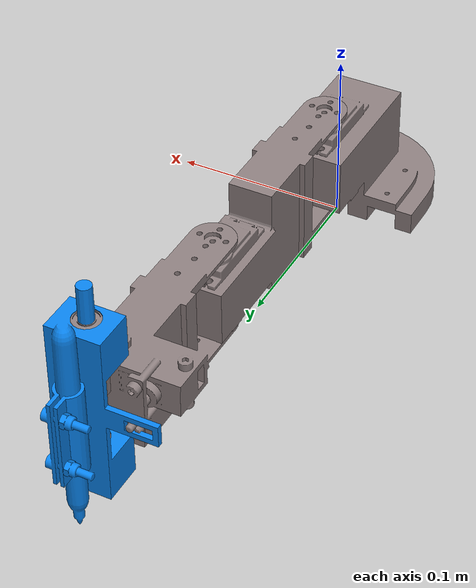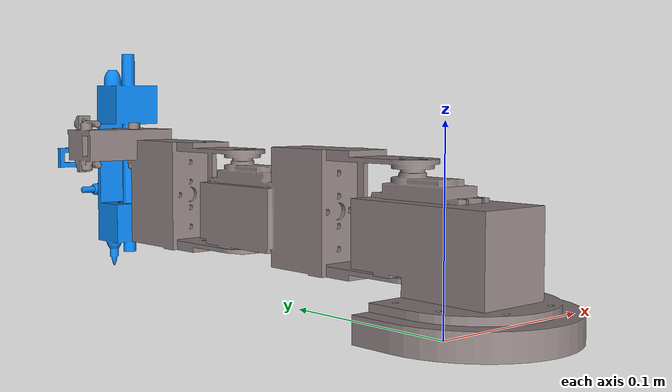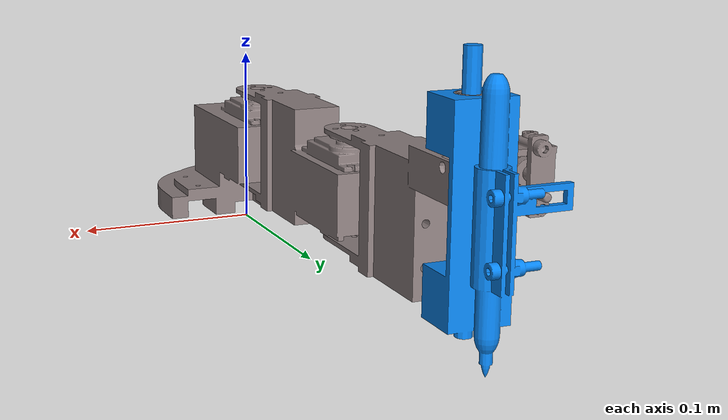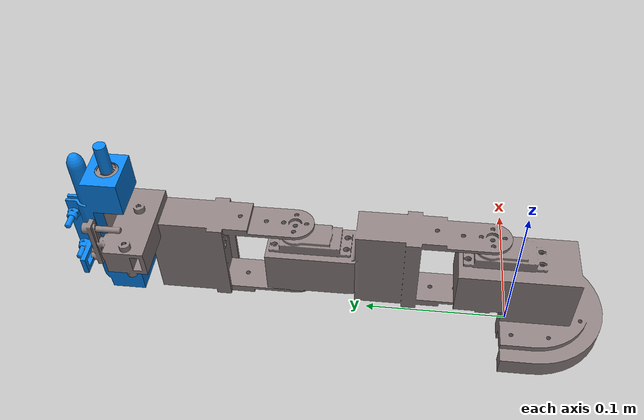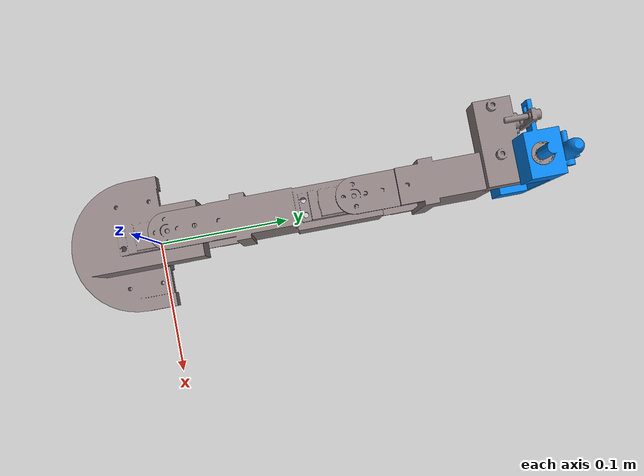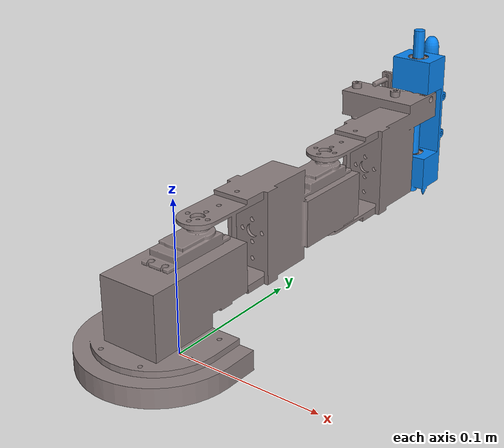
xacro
<?xml version="1.0" encoding="utf-8"?>

<robot name="drawing_robot_description" xmlns:xacro="http://ros.org/wiki/xacro">
  <!-- ____________________________________ XACRO IMPORTS AND PROPERTIES _______________________________________-->
  <xacro:include filename="$(find drawing_robot_description)/urdf/colors_and_materials.xacro"/>
  <xacro:include filename="$(find drawing_robot_description)/urdf/drawing_robot_gazebo.urdf.xacro"/>
  <xacro:include filename="$(find drawing_robot_description)/urdf/drawing_robot_transmission.urdf.xacro"/>

  <xacro:property name="angle_servo" value="1.5707" />
  <xacro:property name="black_servo" value="7.605" />
  <xacro:property name="blue_servo" value="0.636" />
  <xacro:property name="offset_pen" value="-0.02" />

  <!-- ____________________________________ BASE LINK DEFINITIONS ______________________________________________-->
  <link name="world"/>
  <joint name="base_joint" type="fixed">
    <parent link="world"/>
    <child link="base_link"/>
    <origin xyz="0.0 0.0 0.0175"/>
  </joint>

  <link
    name="base_link">
    <inertial>
      <origin
        xyz="2.2369E-05 -0.0095991 0.018203"
        rpy="0 0 0" />
      <mass
        value="0.19207" />
      <inertia
        ixx="0.00010604"
        ixy="-5.7604E-12"
        ixz="2.8656E-10"
        iyy="9.0218E-05"
        iyz="-8.2785E-06"
        izz="0.0001446" />
    </inertial>
    <visual>
      <origin
        xyz="0 0 0"
        rpy="0 0 0" />
      <geometry>
        <mesh
          filename="package://drawing_robot_description/meshes/base_link.STL" />
      </geometry>
      <material name="grey_pla"/>
    </visual>
    <collision>
      <origin
        xyz="0 0 0"
        rpy="0 0 0" />
      <geometry>
        <mesh
          filename="package://drawing_robot_description/meshes/base_link.STL" />
      </geometry>
    </collision>
  </link>

  <!-- ________________________________________ ARM 1 DEFINITIONS ______________________________________________-->
  <link
    name="arm_1">
    <inertial>
      <origin
        xyz="9.8801E-05 0.081425 0.0056756"
        rpy="0 0 0" />
      <mass
        value="0.16147" />
      <inertia
        ixx="0.00012764"
        ixy="-5.7417E-12"
        ixz="2.8659E-10"
        iyy="5.7319E-05"
        iyz="6.0193E-06"
        izz="9.0777E-05" />
    </inertial>
    <visual>
      <origin
        xyz="0 0 0"
        rpy="0 0 0" />
      <geometry>
        <mesh
          filename="package://drawing_robot_description/meshes/arm_1.STL" />
      </geometry>
      <material name="grey_pla"/>
    </visual>
    <collision>
      <origin
        xyz="0 0 0"
        rpy="0 0 0" />
      <geometry>
        <mesh
          filename="package://drawing_robot_description/meshes/arm_1.STL" />
      </geometry>
    </collision>
  </link>
  <joint
    name="base_to_arm1"
    type="revolute">
    <origin
      xyz="0 0.019815 0.0295"
      rpy="0 0 0" />
    <parent
      link="base_link" />
    <child
      link="arm_1" />
    <axis
      xyz="0 0 1" />
    <limit
      lower="-${angle_servo}"
      upper="${angle_servo}"
      effort="${black_servo}"
      velocity="8.05" />
  </joint>

  <!-- ________________________________________ ARM 2 DEFINITIONS ______________________________________________-->
  <link
    name="arm_2">
    <inertial>
      <origin
        xyz="-0.0040009 0.073708 0.014062"
        rpy="0 0 0" />
      <mass
        value="0.15444" />
      <inertia
        ixx="7.5619E-05"
        ixy="-8.4032E-08"
        ixz="1.738E-06"
        iyy="6.6114E-05"
        iyz="-3.3092E-06"
        izz="4.0148E-05" />
    </inertial>
    <visual>
      <origin
        xyz="0 0 0"
        rpy="0 0 0" />
      <geometry>
        <mesh
          filename="package://drawing_robot_description/meshes/arm_2.STL" />
      </geometry>
      <material name="grey_pla"/>
    </visual>
    <collision>
      <origin
        xyz="0 0 0"
        rpy="0 0 0" />
      <geometry>
        <mesh
          filename="package://drawing_robot_description/meshes/arm_2.STL" />
      </geometry>
    </collision>
  </link>
  <joint
    name="arm_2_to_arm_1"
    type="revolute">
    <origin
      xyz="0 0.12845 0.00093551"
      rpy="0 0 0" />
    <parent
      link="arm_1" />
    <child
      link="arm_2" />
    <axis
      xyz="0 0 1" />
    <limit
      lower="-${angle_servo}"
      upper="${angle_servo}"
      effort="${black_servo}"
      velocity="8.05" />
  </joint>

  <!-- ________________________________________ END EFFECTOR DEFINITIONS ______________________________________________-->
  <link
    name="hand">
    <inertial>
      <origin
        xyz="-0.00030849 -0.0071882 0.0050741"
        rpy="0 0 0" />
      <mass
        value="0.078332" />
      <inertia
        ixx="9.0141E-05"
        ixy="-1.4456E-07"
        ixz="-1.3295E-07"
        iyy="9.0236E-05"
        iyz="3.1377E-07"
        izz="9.782E-06" />
    </inertial>
    <visual>
      <origin
        xyz="0 0 0"
        rpy="0 0 0" />
      <geometry>
        <mesh
          filename="package://drawing_robot_description/meshes/hand.STL" />
      </geometry>
      <material name="blue_pla"/>
    </visual>
    <collision>
      <origin
        xyz="0 0 0"
        rpy="0 0 0" />
      <geometry>
        <mesh
          filename="package://drawing_robot_description/meshes/hand.STL" />
      </geometry>
    </collision>
  </link>
  <joint
    name="hand_to_arm2"
    type="prismatic">
    <origin
      xyz="0 0.11785 0.027766"
      rpy="3.1416 0 0" />
    <parent
      link="arm_2" />
    <child
      link="hand" />
    <axis
      xyz="0 0 -1" />
    <limit
      lower="${offset_pen}"
      upper="0"
      effort="${blue_servo}"
      velocity="3" />
  </joint>
</robot>

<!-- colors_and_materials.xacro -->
<robot name="xacro_properties" xmlns:xacro="http://ros.org/wiki/xacro">
    <material name="grey_pla">
        <color rgba="0.552 0.501 0.501 1"/>
    </material>

    <material name="blue_pla">
        <color rgba="0.035 0.517 0.937 1"/>
    </material>
</robot>
